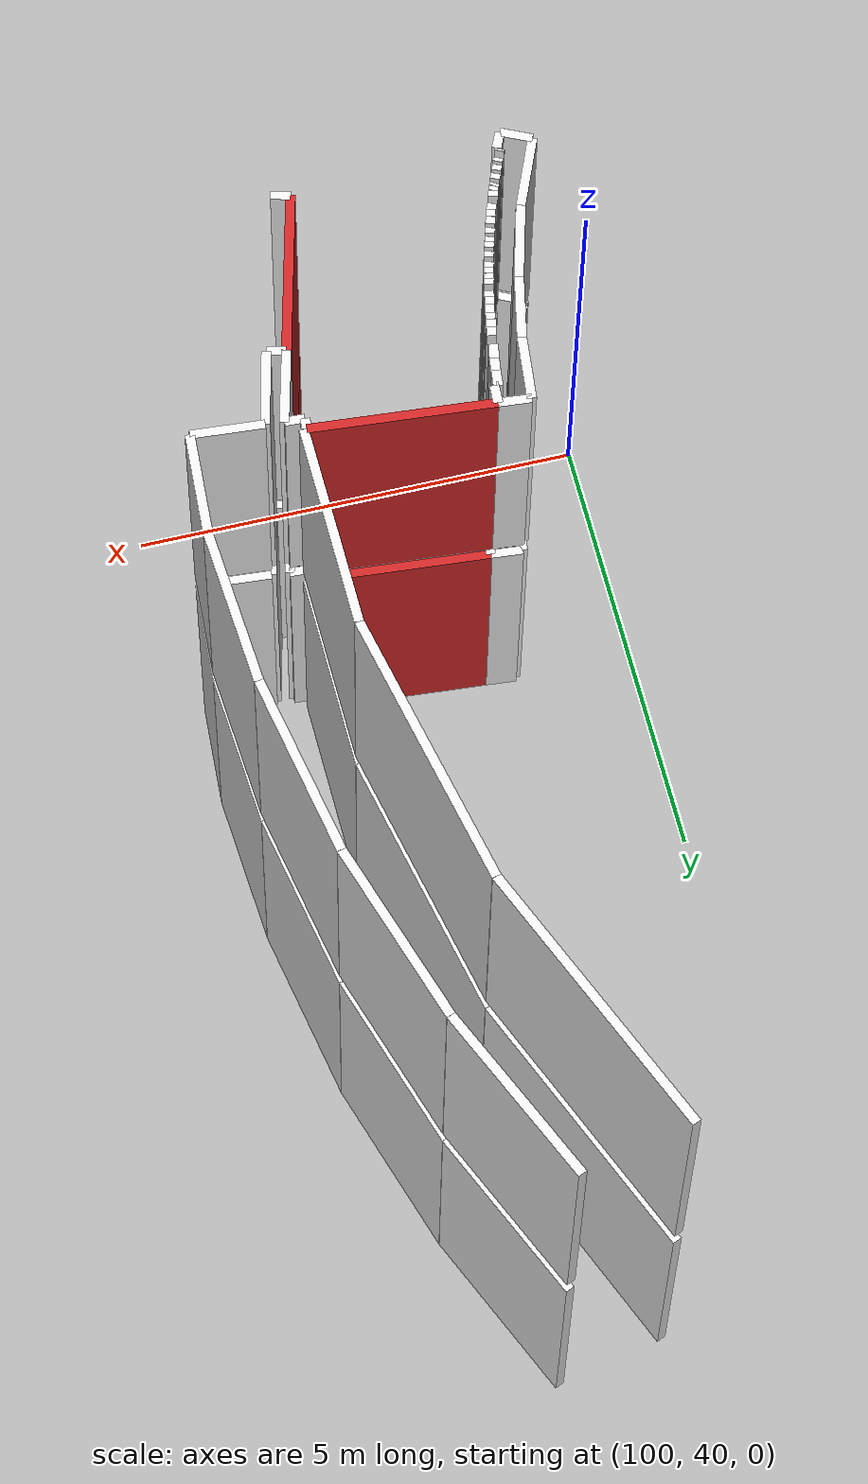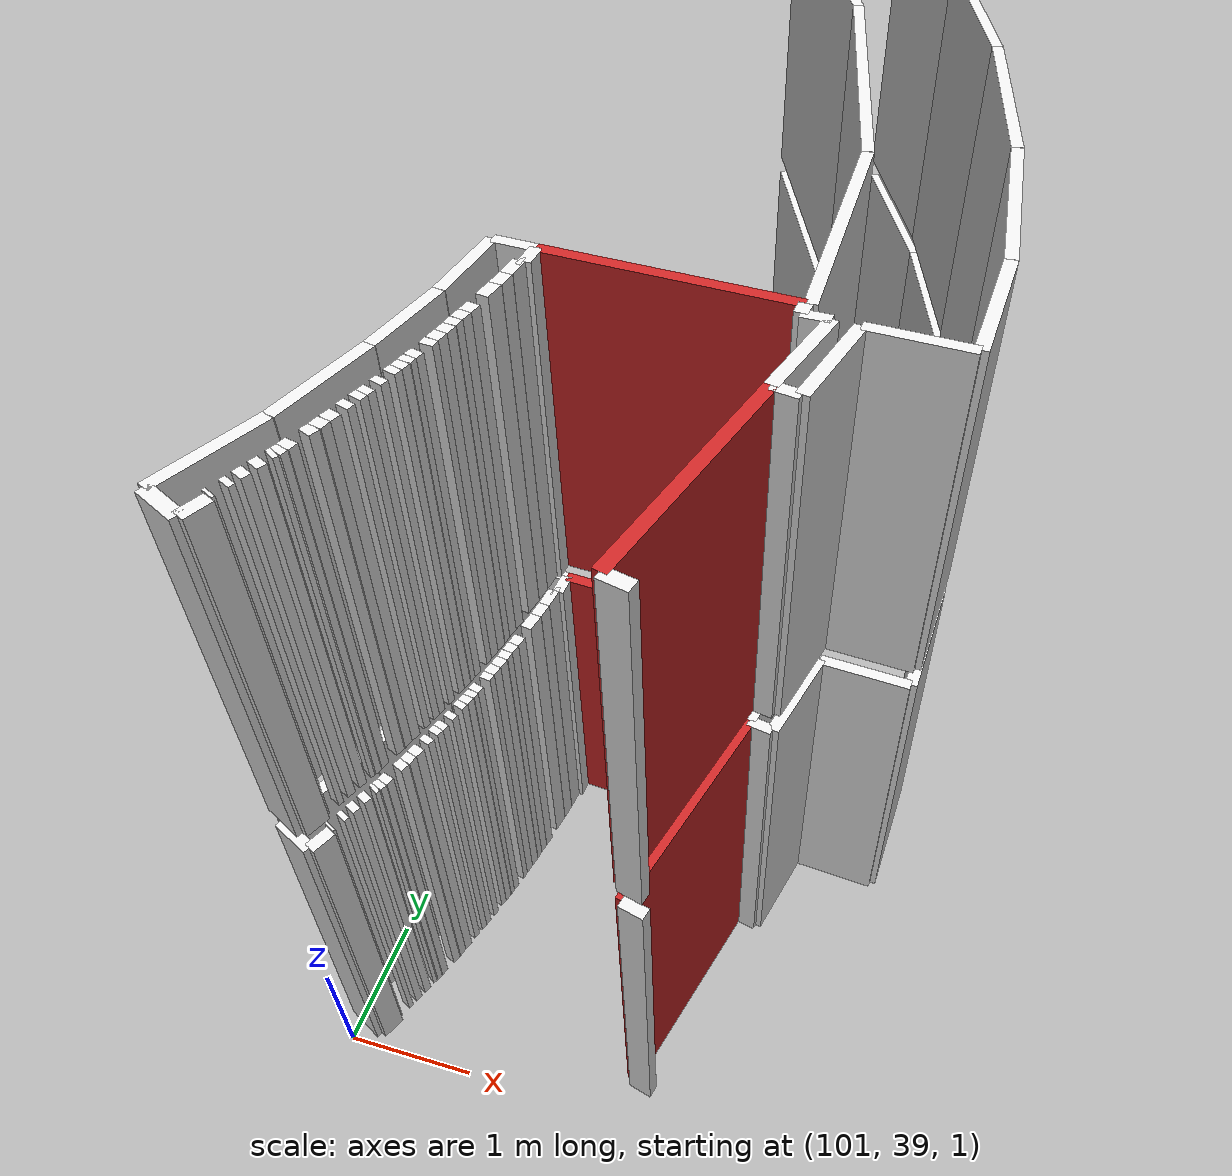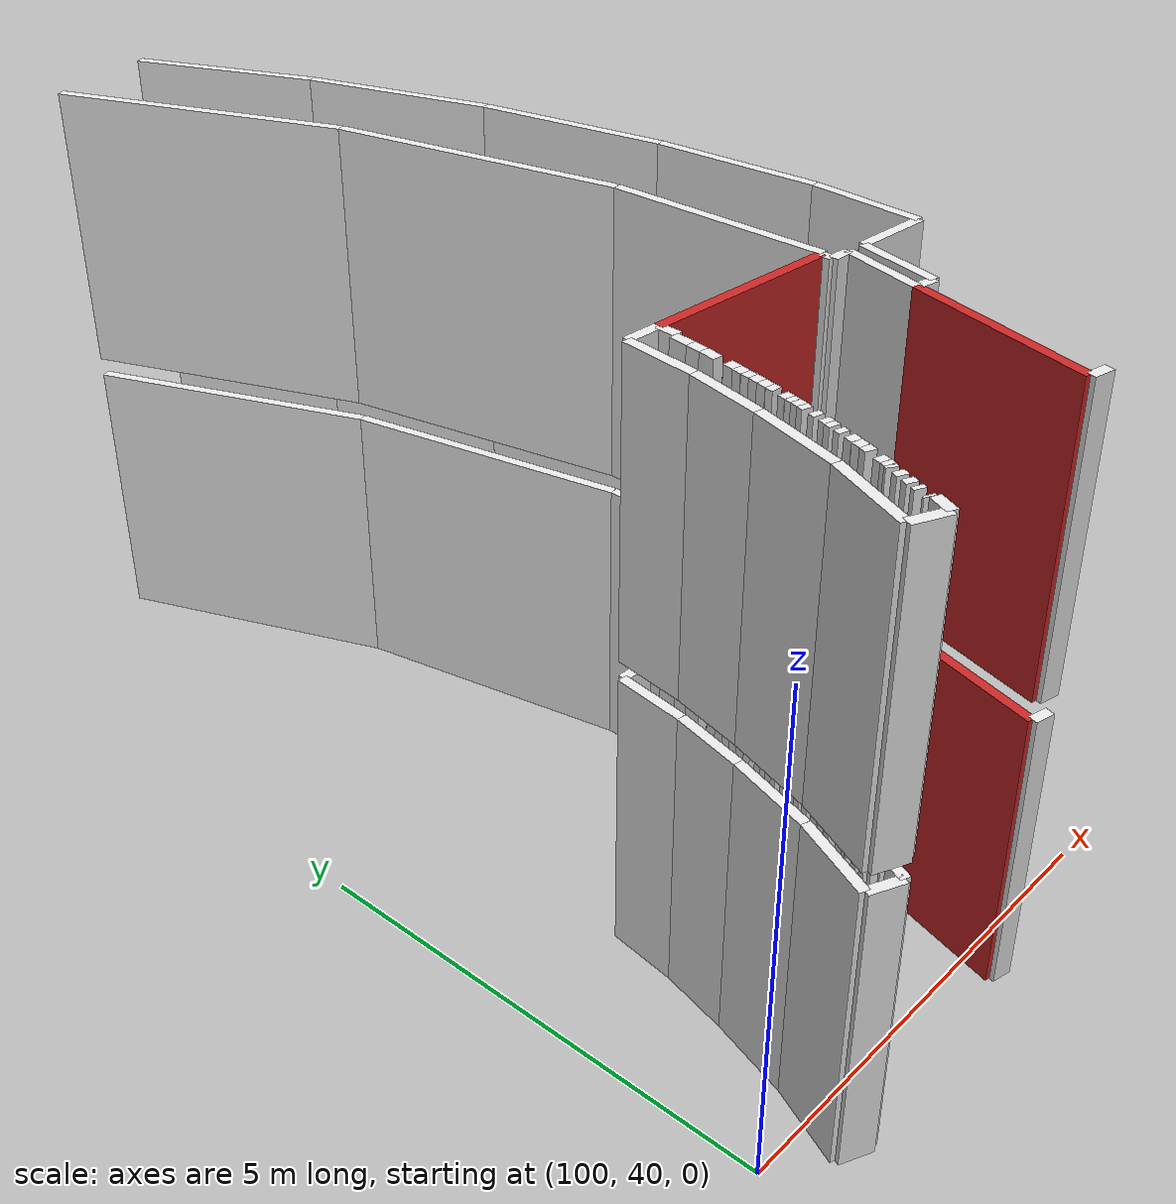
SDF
<sdf version="1.6">
 <world name="default">
  <model name="wall_102.6_42.5_0.0">
   <static>true</static>
   <pose>102.60500000001048 42.48999999999069 1.5 0 0 -0.08271241528552369</pose>
   <link name="link">
    <visual name="visual">
     <geometry><box><size>1.9366207682124321 0.1 3</size></box></geometry>
     <material>
      <script><uri>file://media/materials/scripts/gazebo.material</uri><name>Gazebo/Red</name></script>
     </material>
    </visual>
   </link>
  </model>
  <model name="wall_103.3_40.6_0.0">
   <static>true</static>
   <pose>103.3299999999872 40.59000000008382 1.5 0 0 -1.823690391929414</pose>
   <link name="link">
    <visual name="visual">
     <geometry><box><size>1.8384776308918926 0.1 3</size></box></geometry>
     <material>
      <script><uri>file://media/materials/scripts/gazebo.material</uri><name>Gazebo/Red</name></script>
     </material>
    </visual>
   </link>
  </model>
  <model name="wall_100.9_39.7_0.0">
   <static>true</static>
   <pose>100.88500000000931 39.670000000158325 1.5 0 0 1.1071487177940904</pose>
   <link name="link">
    <visual name="visual">
     <geometry><box><size>0.022360679795822902 0.1 3</size></box></geometry>
     <material>
      <script><uri>file://media/materials/scripts/gazebo.material</uri><name>Gazebo/White</name></script>
     </material>
    </visual>
   </link>
  </model>
  <model name="wall_100.9_39.8_0.0">
   <static>true</static>
   <pose>100.92999999999302 39.77999999979511 1.5 0 0 1.1071487177940904</pose>
   <link name="link">
    <visual name="visual">
     <geometry><box><size>0.044721359591645804 0.1 3</size></box></geometry>
     <material>
      <script><uri>file://media/materials/scripts/gazebo.material</uri><name>Gazebo/White</name></script>
     </material>
    </visual>
   </link>
  </model>
  <model name="wall_101.0_39.9_0.0">
   <static>true</static>
   <pose>100.96499999999651 39.86999999987893 1.5 0 0 1.1071487185701927</pose>
   <link name="link">
    <visual name="visual">
     <geometry><box><size>0.06708203936143745 0.1 3</size></box></geometry>
     <material>
      <script><uri>file://media/materials/scripts/gazebo.material</uri><name>Gazebo/White</name></script>
     </material>
    </visual>
   </link>
  </model>
  <model name="wall_101.0_40.0_0.0">
   <static>true</static>
   <pose>101.00500000000466 39.96999999997206 1.5 0 0 1.1071487177940904</pose>
   <link name="link">
    <visual name="visual">
     <geometry><box><size>0.0670820393874687 0.1 3</size></box></geometry>
     <material>
      <script><uri>file://media/materials/scripts/gazebo.material</uri><name>Gazebo/White</name></script>
     </material>
    </visual>
   </link>
  </model>
  <model name="wall_101.0_40.1_0.0">
   <static>true</static>
   <pose>101.04000000000815 40.06499999994412 1.5 0 0 0.9827937281725927</pose>
   <link name="link">
    <visual name="visual">
     <geometry><box><size>0.03605551294965821 0.1 3</size></box></geometry>
     <material>
      <script><uri>file://media/materials/scripts/gazebo.material</uri><name>Gazebo/White</name></script>
     </material>
    </visual>
   </link>
  </model>
  <model name="wall_101.1_40.1_0.0">
   <static>true</static>
   <pose>101.05999999999767 40.10499999998137 1.5 0 0 1.1902899480768032</pose>
   <link name="link">
    <visual name="visual">
     <geometry><box><size>0.05385164790532047 0.1 3</size></box></geometry>
     <material>
      <script><uri>file://media/materials/scripts/gazebo.material</uri><name>Gazebo/White</name></script>
     </material>
    </visual>
   </link>
  </model>
  <model name="wall_101.1_40.2_0.0">
   <static>true</static>
   <pose>101.0800000000163 40.16500000003725 1.5 0 0 1.2924966686683914</pose>
   <link name="link">
    <visual name="visual">
     <geometry><box><size>0.07280109918447873 0.1 3</size></box></geometry>
     <material>
      <script><uri>file://media/materials/scripts/gazebo.material</uri><name>Gazebo/White</name></script>
     </material>
    </visual>
   </link>
  </model>
  <model name="wall_101.1_40.3_0.0">
   <static>true</static>
   <pose>101.13500000000931 40.31499999994412 1.5 0 0 1.1659045417141096</pose>
   <link name="link">
    <visual name="visual">
     <geometry><box><size>0.07615773134357162 0.1 3</size></box></geometry>
     <material>
      <script><uri>file://media/materials/scripts/gazebo.material</uri><name>Gazebo/White</name></script>
     </material>
    </visual>
   </link>
  </model>
  <model name="wall_101.2_40.4_0.0">
   <static>true</static>
   <pose>101.16000000000349 40.390000000130385 1.5 0 0 1.3258176643528286</pose>
   <link name="link">
    <visual name="visual">
     <geometry><box><size>0.08246211257503461 0.1 3</size></box></geometry>
     <material>
      <script><uri>file://media/materials/scripts/gazebo.material</uri><name>Gazebo/White</name></script>
     </material>
    </visual>
   </link>
  </model>
  <model name="wall_101.2_40.5_0.0">
   <static>true</static>
   <pose>101.18499999999767 40.46999999997206 1.5 0 0 1.2120256546106478</pose>
   <link name="link">
    <visual name="visual">
     <geometry><box><size>0.0854400370967353 0.1 3</size></box></geometry>
     <material>
      <script><uri>file://media/materials/scripts/gazebo.material</uri><name>Gazebo/White</name></script>
     </material>
    </visual>
   </link>
  </model>
  <model name="wall_101.2_40.6_0.0">
   <static>true</static>
   <pose>101.22000000000116 40.59000000008382 1.5 0 0 1.2490457732713693</pose>
   <link name="link">
    <visual name="visual">
     <geometry><box><size>0.06324555324386272 0.1 3</size></box></geometry>
     <material>
      <script><uri>file://media/materials/scripts/gazebo.material</uri><name>Gazebo/White</name></script>
     </material>
    </visual>
   </link>
  </model>
  <model name="wall_101.2_40.7_0.0">
   <static>true</static>
   <pose>101.25 40.69000000017695 1.5 0 0 1.2490457723982544</pose>
   <link name="link">
    <visual name="visual">
     <geometry><box><size>0.06324555326226959 0.1 3</size></box></geometry>
     <material>
      <script><uri>file://media/materials/scripts/gazebo.material</uri><name>Gazebo/White</name></script>
     </material>
    </visual>
   </link>
  </model>
  <model name="wall_101.3_40.8_0.0">
   <static>true</static>
   <pose>101.27000000001863 40.75 1.5 0 0 1.249045770069948</pose>
   <link name="link">
    <visual name="visual">
     <geometry><box><size>0.06324555282050451 0.1 3</size></box></geometry>
     <material>
      <script><uri>file://media/materials/scripts/gazebo.material</uri><name>Gazebo/White</name></script>
     </material>
    </visual>
   </link>
  </model>
  <model name="wall_101.3_40.9_0.0">
   <static>true</static>
   <pose>101.29999999998836 40.860000000102445 1.5 0 0 1.2490457723982544</pose>
   <link name="link">
    <visual name="visual">
     <geometry><box><size>0.06324555326226959 0.1 3</size></box></geometry>
     <material>
      <script><uri>file://media/materials/scripts/gazebo.material</uri><name>Gazebo/White</name></script>
     </material>
    </visual>
   </link>
  </model>
  <model name="wall_101.3_41.0_0.0">
   <static>true</static>
   <pose>101.3300000000163 40.97999999998137 1.5 0 0 1.249045770069948</pose>
   <link name="link">
    <visual name="visual">
     <geometry><box><size>0.06324555282050451 0.1 3</size></box></geometry>
     <material>
      <script><uri>file://media/materials/scripts/gazebo.material</uri><name>Gazebo/White</name></script>
     </material>
    </visual>
   </link>
  </model>
  <model name="wall_101.4_41.0_0.0">
   <static>true</static>
   <pose>101.35000000000582 41.044999999925494 1.5 0 0 1.2924966694371718</pose>
   <link name="link">
    <visual name="visual">
     <geometry><box><size>0.07280109916848786 0.1 3</size></box></geometry>
     <material>
      <script><uri>file://media/materials/scripts/gazebo.material</uri><name>Gazebo/White</name></script>
     </material>
    </visual>
   </link>
  </model>
  <model name="wall_101.4_41.1_0.0">
   <static>true</static>
   <pose>101.36499999999069 41.110000000102445 1.5 0 0 1.4056476493802699</pose>
   <link name="link">
    <visual name="visual">
     <geometry><box><size>0.060827625359632334 0.1 3</size></box></geometry>
     <material>
      <script><uri>file://media/materials/scripts/gazebo.material</uri><name>Gazebo/White</name></script>
     </material>
    </visual>
   </link>
  </model>
  <model name="wall_101.4_41.2_0.0">
   <static>true</static>
   <pose>101.38000000000466 41.175000000046566 1.5 0 0 1.292496666911179</pose>
   <link name="link">
    <visual name="visual">
     <geometry><box><size>0.07280109873673425 0.1 3</size></box></geometry>
     <material>
      <script><uri>file://media/materials/scripts/gazebo.material</uri><name>Gazebo/White</name></script>
     </material>
    </visual>
   </link>
  </model>
  <model name="wall_101.4_41.3_0.0">
   <static>true</static>
   <pose>101.41499999997905 41.31499999994412 1.5 0 0 1.428899272656394</pose>
   <link name="link">
    <visual name="visual">
     <geometry><box><size>0.07071067841499978 0.1 3</size></box></geometry>
     <material>
      <script><uri>file://media/materials/scripts/gazebo.material</uri><name>Gazebo/White</name></script>
     </material>
    </visual>
   </link>
  </model>
  <model name="wall_101.4_41.4_0.0">
   <static>true</static>
   <pose>101.42999999999302 41.39500000001863 1.5 0 0 1.3521273803731177</pose>
   <link name="link">
    <visual name="visual">
     <geometry><box><size>0.0921954444315063 0.1 3</size></box></geometry>
     <material>
      <script><uri>file://media/materials/scripts/gazebo.material</uri><name>Gazebo/White</name></script>
     </material>
    </visual>
   </link>
  </model>
  <model name="wall_101.5_41.5_0.0">
   <static>true</static>
   <pose>101.45000000001164 41.484999999869615 1.5 0 0 1.3521273803731177</pose>
   <link name="link">
    <visual name="visual">
     <geometry><box><size>0.0921954444315063 0.1 3</size></box></geometry>
     <material>
      <script><uri>file://media/materials/scripts/gazebo.material</uri><name>Gazebo/White</name></script>
     </material>
    </visual>
   </link>
  </model>
  <model name="wall_101.5_41.6_0.0">
   <static>true</static>
   <pose>101.46499999999651 41.56999999983236 1.5 0 0 1.4464413329645371</pose>
   <link name="link">
    <visual name="visual">
     <geometry><box><size>0.08062257755085135 0.1 3</size></box></geometry>
     <material>
      <script><uri>file://media/materials/scripts/gazebo.material</uri><name>Gazebo/White</name></script>
     </material>
    </visual>
   </link>
  </model>
  <model name="wall_101.5_41.7_0.0">
   <static>true</static>
   <pose>101.47999999998137 41.65500000002794 1.5 0 0 1.3521273814687915</pose>
   <link name="link">
    <visual name="visual">
     <geometry><box><size>0.09219544488607884 0.1 3</size></box></geometry>
     <material>
      <script><uri>file://media/materials/scripts/gazebo.material</uri><name>Gazebo/White</name></script>
     </material>
    </visual>
   </link>
  </model>
  <model name="wall_101.5_41.8_0.0">
   <static>true</static>
   <pose>101.5 41.75 1.5 0 0 1.3734007660495133</pose>
   <link name="link">
    <visual name="visual">
     <geometry><box><size>0.10198038991021388 0.1 3</size></box></geometry>
     <material>
      <script><uri>file://media/materials/scripts/gazebo.material</uri><name>Gazebo/White</name></script>
     </material>
    </visual>
   </link>
  </model>
  <model name="wall_101.5_42.0_0.0">
   <static>true</static>
   <pose>101.53500000000349 41.97999999998137 1.5 0 0 1.3854483771506443</pose>
   <link name="link">
    <visual name="visual">
     <geometry><box><size>0.16278820610187839 0.1 3</size></box></geometry>
     <material>
      <script><uri>file://media/materials/scripts/gazebo.material</uri><name>Gazebo/White</name></script>
     </material>
    </visual>
   </link>
  </model>
  <model name="wall_101.6_42.1_0.0">
   <static>true</static>
   <pose>101.55999999999767 42.13000000012107 1.5 0 0 1.4288992721907328</pose>
   <link name="link">
    <visual name="visual">
     <geometry><box><size>0.1414213563690184 0.1 3</size></box></geometry>
     <material>
      <script><uri>file://media/materials/scripts/gazebo.material</uri><name>Gazebo/White</name></script>
     </material>
    </visual>
   </link>
  </model>
  <model name="wall_101.6_42.3_0.0">
   <static>true</static>
   <pose>101.5800000000163 42.29000000003725 1.5 0 0 1.4601391053370611</pose>
   <link name="link">
    <visual name="visual">
     <geometry><box><size>0.18110770246860486 0.1 3</size></box></geometry>
     <material>
      <script><uri>file://media/materials/scripts/gazebo.material</uri><name>Gazebo/White</name></script>
     </material>
    </visual>
   </link>
  </model>
  <model name="wall_101.6_42.4_0.0">
   <static>true</static>
   <pose>101.61000000001513 42.375 1.5 0 0 -0.24497865799089408</pose>
   <link name="link">
    <visual name="visual">
     <geometry><box><size>0.04123105618163657 0.1 3</size></box></geometry>
     <material>
      <script><uri>file://media/materials/scripts/gazebo.material</uri><name>Gazebo/White</name></script>
     </material>
    </visual>
   </link>
  </model>
  <model name="wall_101.6_42.5_0.0">
   <static>true</static>
   <pose>101.63500000000931 42.46999999997206 1.5 0 0 1.520837930956829</pose>
   <link name="link">
    <visual name="visual">
     <geometry><box><size>0.20024984366642476 0.1 3</size></box></geometry>
     <material>
      <script><uri>file://media/materials/scripts/gazebo.material</uri><name>Gazebo/White</name></script>
     </material>
    </visual>
   </link>
  </model>
  <model name="wall_103.6_42.4_0.0">
   <static>true</static>
   <pose>103.56500000000233 42.35000000009313 1.5 0 0 -1.6539375586833378</pose>
   <link name="link">
    <visual name="visual">
     <geometry><box><size>0.12041594590006904 0.1 3</size></box></geometry>
     <material>
      <script><uri>file://media/materials/scripts/gazebo.material</uri><name>Gazebo/White</name></script>
     </material>
    </visual>
   </link>
  </model>
  <model name="wall_103.7_42.3_0.0">
   <static>true</static>
   <pose>103.66500000000815 42.28499999991618 1.5 0 0 -0.0475831044226998</pose>
   <link name="link">
    <visual name="visual">
     <geometry><box><size>0.21023796044873502 0.1 3</size></box></geometry>
     <material>
      <script><uri>file://media/materials/scripts/gazebo.material</uri><name>Gazebo/White</name></script>
     </material>
    </visual>
   </link>
  </model>
  <model name="wall_103.7_41.9_0.0">
   <static>true</static>
   <pose>103.66500000000815 41.87999999988824 1.5 0 0 -1.8275046573099654</pose>
   <link name="link">
    <visual name="visual">
     <geometry><box><size>0.8271033790952481 0.1 3</size></box></geometry>
     <material>
      <script><uri>file://media/materials/scripts/gazebo.material</uri><name>Gazebo/White</name></script>
     </material>
    </visual>
   </link>
  </model>
  <model name="wall_100.9_39.6_0.0">
   <static>true</static>
   <pose>100.86999999999534 39.550000000046566 1.5 0 0 1.1525719977557387</pose>
   <link name="link">
    <visual name="visual">
     <geometry><box><size>0.19697715617209063 0.1 3</size></box></geometry>
     <material>
      <script><uri>file://media/materials/scripts/gazebo.material</uri><name>Gazebo/White</name></script>
     </material>
    </visual>
   </link>
  </model>
  <model name="wall_102.3_49.1_0.0">
   <static>true</static>
   <pose>102.34500000000116 49.050000000046566 1.5 0 0 -1.1789674300212807</pose>
   <link name="link">
    <visual name="visual">
     <geometry><box><size>3.1161675182897373 0.1 3</size></box></geometry>
     <material>
      <script><uri>file://media/materials/scripts/gazebo.material</uri><name>Gazebo/White</name></script>
     </material>
    </visual>
   </link>
  </model>
  <model name="wall_103.3_46.1_0.0">
   <static>true</static>
   <pose>103.25500000000466 46.125 1.5 0 0 -1.361773383969309</pose>
   <link name="link">
    <visual name="visual">
     <geometry><box><size>3.036083002563812 0.1 3</size></box></geometry>
     <material>
      <script><uri>file://media/materials/scripts/gazebo.material</uri><name>Gazebo/White</name></script>
     </material>
    </visual>
   </link>
  </model>
  <model name="wall_103.6_43.5_0.0">
   <static>true</static>
   <pose>103.58499999999185 43.5250000001397 1.5 0 0 -1.5573442234956494</pose>
   <link name="link">
    <visual name="visual">
     <geometry><box><size>2.230201784573564 0.1 3</size></box></geometry>
     <material>
      <script><uri>file://media/materials/scripts/gazebo.material</uri><name>Gazebo/White</name></script>
     </material>
    </visual>
   </link>
  </model>
  <model name="wall_101.5_42.6_0.0">
   <static>true</static>
   <pose>101.47000000000116 42.58499999996275 1.5 0 0 3.053585279307601</pose>
   <link name="link">
    <visual name="visual">
     <geometry><box><size>0.3413209633659526 0.1 3</size></box></geometry>
     <material>
      <script><uri>file://media/materials/scripts/gazebo.material</uri><name>Gazebo/White</name></script>
     </material>
    </visual>
   </link>
  </model>
  <model name="wall_101.3_42.2_0.0">
   <static>true</static>
   <pose>101.25999999998021 42.24500000011176 1.5 0 0 -1.6829991418206562</pose>
   <link name="link">
    <visual name="visual">
     <geometry><box><size>0.7144928270806562 0.1 3</size></box></geometry>
     <material>
      <script><uri>file://media/materials/scripts/gazebo.material</uri><name>Gazebo/White</name></script>
     </material>
    </visual>
   </link>
  </model>
  <model name="wall_101.1_41.5_0.0">
   <static>true</static>
   <pose>101.14499999998952 41.54000000003725 1.5 0 0 -1.7818896599154248</pose>
   <link name="link">
    <visual name="visual">
     <geometry><box><size>0.7158910533386299 0.1 3</size></box></geometry>
     <material>
      <script><uri>file://media/materials/scripts/gazebo.material</uri><name>Gazebo/White</name></script>
     </material>
    </visual>
   </link>
  </model>
  <model name="wall_101.0_40.8_0.0">
   <static>true</static>
   <pose>100.9550000000163 40.78000000002794 1.5 0 0 -1.8442573139172422</pose>
   <link name="link">
    <visual name="visual">
     <geometry><box><size>0.8516454659754289 0.1 3</size></box></geometry>
     <material>
      <script><uri>file://media/materials/scripts/gazebo.material</uri><name>Gazebo/White</name></script>
     </material>
    </visual>
   </link>
  </model>
  <model name="wall_100.7_40.0_0.0">
   <static>true</static>
   <pose>100.68000000002212 39.98999999999069 1.5 0 0 -1.9693187723551735</pose>
   <link name="link">
    <visual name="visual">
     <geometry><box><size>0.824621125349411 0.1 3</size></box></geometry>
     <material>
      <script><uri>file://media/materials/scripts/gazebo.material</uri><name>Gazebo/White</name></script>
     </material>
    </visual>
   </link>
  </model>
  <model name="wall_100.7_39.5_0.0">
   <static>true</static>
   <pose>100.67500000001746 39.53499999991618 1.5 0 0 -0.4506613258401467</pose>
   <link name="link">
    <visual name="visual">
     <geometry><box><size>0.34438350711179067 0.1 3</size></box></geometry>
     <material>
      <script><uri>file://media/materials/scripts/gazebo.material</uri><name>Gazebo/White</name></script>
     </material>
    </visual>
   </link>
  </model>
  <model name="wall_103.2_39.7_0.0">
   <static>true</static>
   <pose>103.19999999998254 39.675000000046566 1.5 0 0 2.896613989161817</pose>
   <link name="link">
    <visual name="visual">
     <geometry><box><size>0.20615528135994066 0.1 3</size></box></geometry>
     <material>
      <script><uri>file://media/materials/scripts/gazebo.material</uri><name>Gazebo/White</name></script>
     </material>
    </visual>
   </link>
  </model>
  <model name="wall_103.7_41.5_0.0">
   <static>true</static>
   <pose>103.66000000000349 41.45999999996275 1.5 0 0 -0.19739556001778746</pose>
   <link name="link">
    <visual name="visual">
     <geometry><box><size>0.20396078056243275 0.1 3</size></box></geometry>
     <material>
      <script><uri>file://media/materials/scripts/gazebo.material</uri><name>Gazebo/White</name></script>
     </material>
    </visual>
   </link>
  </model>
  <model name="wall_103.9_41.8_0.0">
   <static>true</static>
   <pose>103.86000000001513 41.8499999998603 1.5 0 0 1.3315647267707733</pose>
   <link name="link">
    <visual name="visual">
     <geometry><box><size>0.8440379136802625 0.1 3</size></box></geometry>
     <material>
      <script><uri>file://media/materials/scripts/gazebo.material</uri><name>Gazebo/White</name></script>
     </material>
    </visual>
   </link>
  </model>
  <model name="wall_104.3_42.2_0.0">
   <static>true</static>
   <pose>104.33999999999651 42.22999999998137 1.5 0 0 -0.07878396045834442</pose>
   <link name="link">
    <visual name="visual">
     <geometry><box><size>0.762364742020843 0.1 3</size></box></geometry>
     <material>
      <script><uri>file://media/materials/scripts/gazebo.material</uri><name>Gazebo/White</name></script>
     </material>
    </visual>
   </link>
  </model>
  <model name="wall_104.8_42.8_0.0">
   <static>true</static>
   <pose>104.75499999997555 42.77000000001863 1.5 0 0 1.509469815630436</pose>
   <link name="link">
    <visual name="visual">
     <geometry><box><size>1.1421471005245114 0.1 3</size></box></geometry>
     <material>
      <script><uri>file://media/materials/scripts/gazebo.material</uri><name>Gazebo/White</name></script>
     </material>
    </visual>
   </link>
  </model>
  <model name="wall_104.7_44.2_0.0">
   <static>true</static>
   <pose>104.72999999998137 44.18999999994412 1.5 0 0 1.6412676713632708</pose>
   <link name="link">
    <visual name="visual">
     <geometry><box><size>1.7042300316072891 0.1 3</size></box></geometry>
     <material>
      <script><uri>file://media/materials/scripts/gazebo.material</uri><name>Gazebo/White</name></script>
     </material>
    </visual>
   </link>
  </model>
  <model name="wall_104.5_46.0_0.0">
   <static>true</static>
   <pose>104.48999999999069 46.015000000130385 1.5 0 0 1.7533561799018222</pose>
   <link name="link">
    <visual name="visual">
     <geometry><box><size>1.982952344539922 0.1 3</size></box></geometry>
     <material>
      <script><uri>file://media/materials/scripts/gazebo.material</uri><name>Gazebo/White</name></script>
     </material>
    </visual>
   </link>
  </model>
  <model name="wall_104.0_47.9_0.0">
   <static>true</static>
   <pose>104.01000000000931 47.94500000006519 1.5 0 0 1.8751710629953546</pose>
   <link name="link">
    <visual name="visual">
     <geometry><box><size>2.002023975571336 0.1 3</size></box></geometry>
     <material>
      <script><uri>file://media/materials/scripts/gazebo.material</uri><name>Gazebo/White</name></script>
     </material>
    </visual>
   </link>
  </model>
  <model name="wall_103.3_49.8_0.0">
   <static>true</static>
   <pose>103.30999999999767 49.81499999994412 1.5 0 0 1.9829200711588533</pose>
   <link name="link">
    <visual name="visual">
     <geometry><box><size>1.9972230722548738 0.1 3</size></box></geometry>
     <material>
      <script><uri>file://media/materials/scripts/gazebo.material</uri><name>Gazebo/White</name></script>
     </material>
    </visual>
   </link>
  </model>
  <model name="wall_102.6_42.5_3.2">
   <static>true</static>
   <pose>102.60500000001048 42.48999999999069 4.7 0 0 -0.08271241528552369</pose>
   <link name="link">
    <visual name="visual">
     <geometry><box><size>1.9366207682124321 0.1 3</size></box></geometry>
     <material>
      <script><uri>file://media/materials/scripts/gazebo.material</uri><name>Gazebo/Red</name></script>
     </material>
    </visual>
   </link>
  </model>
  <model name="wall_103.3_40.6_3.2">
   <static>true</static>
   <pose>103.3299999999872 40.59000000008382 4.7 0 0 -1.823690391929414</pose>
   <link name="link">
    <visual name="visual">
     <geometry><box><size>1.8384776308918926 0.1 3</size></box></geometry>
     <material>
      <script><uri>file://media/materials/scripts/gazebo.material</uri><name>Gazebo/Red</name></script>
     </material>
    </visual>
   </link>
  </model>
  <model name="wall_100.9_39.7_3.2">
   <static>true</static>
   <pose>100.88500000000931 39.670000000158325 4.7 0 0 1.1071487177940904</pose>
   <link name="link">
    <visual name="visual">
     <geometry><box><size>0.022360679795822902 0.1 3</size></box></geometry>
     <material>
      <script><uri>file://media/materials/scripts/gazebo.material</uri><name>Gazebo/White</name></script>
     </material>
    </visual>
   </link>
  </model>
  <model name="wall_100.9_39.8_3.2">
   <static>true</static>
   <pose>100.92999999999302 39.77999999979511 4.7 0 0 1.1071487177940904</pose>
   <link name="link">
    <visual name="visual">
     <geometry><box><size>0.044721359591645804 0.1 3</size></box></geometry>
     <material>
      <script><uri>file://media/materials/scripts/gazebo.material</uri><name>Gazebo/White</name></script>
     </material>
    </visual>
   </link>
  </model>
  <model name="wall_101.0_39.9_3.2">
   <static>true</static>
   <pose>100.96499999999651 39.86999999987893 4.7 0 0 1.1071487185701927</pose>
   <link name="link">
    <visual name="visual">
     <geometry><box><size>0.06708203936143745 0.1 3</size></box></geometry>
     <material>
      <script><uri>file://media/materials/scripts/gazebo.material</uri><name>Gazebo/White</name></script>
     </material>
    </visual>
   </link>
  </model>
  <model name="wall_101.0_40.0_3.2">
   <static>true</static>
   <pose>101.00500000000466 39.96999999997206 4.7 0 0 1.1071487177940904</pose>
   <link name="link">
    <visual name="visual">
     <geometry><box><size>0.0670820393874687 0.1 3</size></box></geometry>
     <material>
      <script><uri>file://media/materials/scripts/gazebo.material</uri><name>Gazebo/White</name></script>
     </material>
    </visual>
   </link>
  </model>
  <model name="wall_101.0_40.1_3.2">
   <static>true</static>
   <pose>101.04000000000815 40.06499999994412 4.7 0 0 0.9827937281725927</pose>
   <link name="link">
    <visual name="visual">
     <geometry><box><size>0.03605551294965821 0.1 3</size></box></geometry>
     <material>
      <script><uri>file://media/materials/scripts/gazebo.material</uri><name>Gazebo/White</name></script>
     </material>
    </visual>
   </link>
  </model>
  <model name="wall_101.1_40.1_3.2">
   <static>true</static>
   <pose>101.05999999999767 40.10499999998137 4.7 0 0 1.1902899480768032</pose>
   <link name="link">
    <visual name="visual">
     <geometry><box><size>0.05385164790532047 0.1 3</size></box></geometry>
     <material>
      <script><uri>file://media/materials/scripts/gazebo.material</uri><name>Gazebo/White</name></script>
     </material>
    </visual>
   </link>
  </model>
  <model name="wall_101.1_40.2_3.2">
   <static>true</static>
   <pose>101.0800000000163 40.16500000003725 4.7 0 0 1.2924966686683914</pose>
   <link name="link">
    <visual name="visual">
     <geometry><box><size>0.07280109918447873 0.1 3</size></box></geometry>
     <material>
      <script><uri>file://media/materials/scripts/gazebo.material</uri><name>Gazebo/White</name></script>
     </material>
    </visual>
   </link>
  </model>
  <model name="wall_101.1_40.3_3.2">
   <static>true</static>
   <pose>101.13500000000931 40.31499999994412 4.7 0 0 1.1659045417141096</pose>
   <link name="link">
    <visual name="visual">
     <geometry><box><size>0.07615773134357162 0.1 3</size></box></geometry>
     <material>
      <script><uri>file://media/materials/scripts/gazebo.material</uri><name>Gazebo/White</name></script>
     </material>
    </visual>
   </link>
  </model>
  <model name="wall_101.2_40.4_3.2">
   <static>true</static>
   <pose>101.16000000000349 40.390000000130385 4.7 0 0 1.3258176643528286</pose>
   <link name="link">
    <visual name="visual">
     <geometry><box><size>0.08246211257503461 0.1 3</size></box></geometry>
     <material>
      <script><uri>file://media/materials/scripts/gazebo.material</uri><name>Gazebo/White</name></script>
     </material>
    </visual>
   </link>
  </model>
  <model name="wall_101.2_40.5_3.2">
   <static>true</static>
   <pose>101.18499999999767 40.46999999997206 4.7 0 0 1.2120256546106478</pose>
   <link name="link">
    <visual name="visual">
     <geometry><box><size>0.0854400370967353 0.1 3</size></box></geometry>
     <material>
      <script><uri>file://media/materials/scripts/gazebo.material</uri><name>Gazebo/White</name></script>
     </material>
    </visual>
   </link>
  </model>
  <model name="wall_101.2_40.6_3.2">
   <static>true</static>
   <pose>101.22000000000116 40.59000000008382 4.7 0 0 1.2490457732713693</pose>
   <link name="link">
    <visual name="visual">
     <geometry><box><size>0.06324555324386272 0.1 3</size></box></geometry>
     <material>
      <script><uri>file://media/materials/scripts/gazebo.material</uri><name>Gazebo/White</name></script>
     </material>
    </visual>
   </link>
  </model>
  <model name="wall_101.2_40.7_3.2">
   <static>true</static>
   <pose>101.25 40.69000000017695 4.7 0 0 1.2490457723982544</pose>
   <link name="link">
    <visual name="visual">
     <geometry><box><size>0.06324555326226959 0.1 3</size></box></geometry>
     <material>
      <script><uri>file://media/materials/scripts/gazebo.material</uri><name>Gazebo/White</name></script>
     </material>
    </visual>
   </link>
  </model>
  <model name="wall_101.3_40.8_3.2">
   <static>true</static>
   <pose>101.27000000001863 40.75 4.7 0 0 1.249045770069948</pose>
   <link name="link">
    <visual name="visual">
     <geometry><box><size>0.06324555282050451 0.1 3</size></box></geometry>
     <material>
      <script><uri>file://media/materials/scripts/gazebo.material</uri><name>Gazebo/White</name></script>
     </material>
    </visual>
   </link>
  </model>
  <model name="wall_101.3_40.9_3.2">
   <static>true</static>
   <pose>101.29999999998836 40.860000000102445 4.7 0 0 1.2490457723982544</pose>
   <link name="link">
    <visual name="visual">
     <geometry><box><size>0.06324555326226959 0.1 3</size></box></geometry>
     <material>
      <script><uri>file://media/materials/scripts/gazebo.material</uri><name>Gazebo/White</name></script>
     </material>
    </visual>
   </link>
  </model>
  <model name="wall_101.3_41.0_3.2">
   <static>true</static>
   <pose>101.3300000000163 40.97999999998137 4.7 0 0 1.249045770069948</pose>
   <link name="link">
    <visual name="visual">
     <geometry><box><size>0.06324555282050451 0.1 3</size></box></geometry>
     <material>
      <script><uri>file://media/materials/scripts/gazebo.material</uri><name>Gazebo/White</name></script>
     </material>
    </visual>
   </link>
  </model>
  <model name="wall_101.4_41.0_3.2">
   <static>true</static>
   <pose>101.35000000000582 41.044999999925494 4.7 0 0 1.2924966694371718</pose>
   <link name="link">
    <visual name="visual">
     <geometry><box><size>0.07280109916848786 0.1 3</size></box></geometry>
     <material>
      <script><uri>file://media/materials/scripts/gazebo.material</uri><name>Gazebo/White</name></script>
     </material>
    </visual>
   </link>
  </model>
  <model name="wall_101.4_41.1_3.2">
   <static>true</static>
   <pose>101.36499999999069 41.110000000102445 4.7 0 0 1.4056476493802699</pose>
   <link name="link">
    <visual name="visual">
     <geometry><box><size>0.060827625359632334 0.1 3</size></box></geometry>
     <material>
      <script><uri>file://media/materials/scripts/gazebo.material</uri><name>Gazebo/White</name></script>
     </material>
    </visual>
   </link>
  </model>
  <model name="wall_101.4_41.2_3.2">
   <static>true</static>
   <pose>101.38000000000466 41.175000000046566 4.7 0 0 1.292496666911179</pose>
   <link name="link">
    <visual name="visual">
     <geometry><box><size>0.07280109873673425 0.1 3</size></box></geometry>
     <material>
      <script><uri>file://media/materials/scripts/gazebo.material</uri><name>Gazebo/White</name></script>
     </material>
    </visual>
   </link>
  </model>
  <model name="wall_101.4_41.3_3.2">
   <static>true</static>
   <pose>101.41499999997905 41.31499999994412 4.7 0 0 1.428899272656394</pose>
   <link name="link">
    <visual name="visual">
     <geometry><box><size>0.07071067841499978 0.1 3</size></box></geometry>
     <material>
      <script><uri>file://media/materials/scripts/gazebo.material</uri><name>Gazebo/White</name></script>
     </material>
    </visual>
   </link>
  </model>
  <model name="wall_101.4_41.4_3.2">
   <static>true</static>
   <pose>101.42999999999302 41.39500000001863 4.7 0 0 1.3521273803731177</pose>
   <link name="link">
    <visual name="visual">
     <geometry><box><size>0.0921954444315063 0.1 3</size></box></geometry>
     <material>
      <script><uri>file://media/materials/scripts/gazebo.material</uri><name>Gazebo/White</name></script>
     </material>
    </visual>
   </link>
  </model>
  <model name="wall_101.5_41.5_3.2">
   <static>true</static>
   <pose>101.45000000001164 41.484999999869615 4.7 0 0 1.3521273803731177</pose>
   <link name="link">
    <visual name="visual">
     <geometry><box><size>0.0921954444315063 0.1 3</size></box></geometry>
     <material>
      <script><uri>file://media/materials/scripts/gazebo.material</uri><name>Gazebo/White</name></script>
     </material>
    </visual>
   </link>
  </model>
  <model name="wall_101.5_41.6_3.2">
   <static>true</static>
   <pose>101.46499999999651 41.56999999983236 4.7 0 0 1.4464413329645371</pose>
   <link name="link">
    <visual name="visual">
     <geometry><box><size>0.08062257755085135 0.1 3</size></box></geometry>
     <material>
      <script><uri>file://media/materials/scripts/gazebo.material</uri><name>Gazebo/White</name></script>
     </material>
    </visual>
   </link>
  </model>
  <model name="wall_101.5_41.7_3.2">
   <static>true</static>
   <pose>101.47999999998137 41.65500000002794 4.7 0 0 1.3521273814687915</pose>
   <link name="link">
    <visual name="visual">
     <geometry><box><size>0.09219544488607884 0.1 3</size></box></geometry>
     <material>
      <script><uri>file://media/materials/scripts/gazebo.material</uri><name>Gazebo/White</name></script>
     </material>
    </visual>
   </link>
  </model>
  <model name="wall_101.5_41.8_3.2">
   <static>true</static>
   <pose>101.5 41.75 4.7 0 0 1.3734007660495133</pose>
   <link name="link">
    <visual name="visual">
     <geometry><box><size>0.10198038991021388 0.1 3</size></box></geometry>
     <material>
      <script><uri>file://media/materials/scripts/gazebo.material</uri><name>Gazebo/White</name></script>
     </material>
    </visual>
   </link>
  </model>
  <model name="wall_101.5_42.0_3.2">
   <static>true</static>
   <pose>101.53500000000349 41.97999999998137 4.7 0 0 1.3854483771506443</pose>
   <link name="link">
    <visual name="visual">
     <geometry><box><size>0.16278820610187839 0.1 3</size></box></geometry>
     <material>
      <script><uri>file://media/materials/scripts/gazebo.material</uri><name>Gazebo/White</name></script>
     </material>
    </visual>
   </link>
  </model>
  <model name="wall_101.6_42.1_3.2">
   <static>true</static>
   <pose>101.55999999999767 42.13000000012107 4.7 0 0 1.4288992721907328</pose>
   <link name="link">
    <visual name="visual">
     <geometry><box><size>0.1414213563690184 0.1 3</size></box></geometry>
     <material>
      <script><uri>file://media/materials/scripts/gazebo.material</uri><name>Gazebo/White</name></script>
     </material>
    </visual>
   </link>
  </model>
  <model name="wall_101.6_42.3_3.2">
   <static>true</static>
   <pose>101.5800000000163 42.29000000003725 4.7 0 0 1.4601391053370611</pose>
   <link name="link">
    <visual name="visual">
     <geometry><box><size>0.18110770246860486 0.1 3</size></box></geometry>
     <material>
      <script><uri>file://media/materials/scripts/gazebo.material</uri><name>Gazebo/White</name></script>
     </material>
    </visual>
   </link>
  </model>
  <model name="wall_101.6_42.4_3.2">
   <static>true</static>
   <pose>101.61000000001513 42.375 4.7 0 0 -0.24497865799089408</pose>
   <link name="link">
    <visual name="visual">
     <geometry><box><size>0.04123105618163657 0.1 3</size></box></geometry>
     <material>
      <script><uri>file://media/materials/scripts/gazebo.material</uri><name>Gazebo/White</name></script>
     </material>
    </visual>
   </link>
  </model>
  <model name="wall_101.6_42.5_3.2">
   <static>true</static>
   <pose>101.63500000000931 42.46999999997206 4.7 0 0 1.520837930956829</pose>
   <link name="link">
    <visual name="visual">
     <geometry><box><size>0.20024984366642476 0.1 3</size></box></geometry>
     <material>
      <script><uri>file://media/materials/scripts/gazebo.material</uri><name>Gazebo/White</name></script>
     </material>
    </visual>
   </link>
  </model>
  <model name="wall_103.6_42.4_3.2">
   <static>true</static>
   <pose>103.56500000000233 42.35000000009313 4.7 0 0 -1.6539375586833378</pose>
   <link name="link">
    <visual name="visual">
     <geometry><box><size>0.12041594590006904 0.1 3</size></box></geometry>
     <material>
      <script><uri>file://media/materials/scripts/gazebo.material</uri><name>Gazebo/White</name></script>
     </material>
    </visual>
   </link>
  </model>
  <model name="wall_103.7_42.3_3.2">
   <static>true</static>
   <pose>103.66500000000815 42.28499999991618 4.7 0 0 -0.0475831044226998</pose>
   <link name="link">
    <visual name="visual">
     <geometry><box><size>0.21023796044873502 0.1 3</size></box></geometry>
     <material>
      <script><uri>file://media/materials/scripts/gazebo.material</uri><name>Gazebo/White</name></script>
     </material>
    </visual>
   </link>
  </model>
  <model name="wall_103.7_41.9_3.2">
   <static>true</static>
   <pose>103.66500000000815 41.87999999988824 4.7 0 0 -1.8275046573099654</pose>
   <link name="link">
    <visual name="visual">
     <geometry><box><size>0.8271033790952481 0.1 3</size></box></geometry>
     <material>
      <script><uri>file://media/materials/scripts/gazebo.material</uri><name>Gazebo/White</name></script>
     </material>
    </visual>
   </link>
  </model>
  <model name="wall_100.9_39.6_3.2">
   <static>true</static>
   <pose>100.86999999999534 39.550000000046566 4.7 0 0 1.1525719977557387</pose>
   <link name="link">
    <visual name="visual">
     <geometry><box><size>0.19697715617209063 0.1 3</size></box></geometry>
     <material>
      <script><uri>file://media/materials/scripts/gazebo.material</uri><name>Gazebo/White</name></script>
     </material>
    </visual>
   </link>
  </model>
  <model name="wall_102.3_49.1_3.2">
   <static>true</static>
   <pose>102.34500000000116 49.050000000046566 4.7 0 0 -1.1789674300212807</pose>
   <link name="link">
    <visual name="visual">
     <geometry><box><size>3.1161675182897373 0.1 3</size></box></geometry>
     <material>
      <script><uri>file://media/materials/scripts/gazebo.material</uri><name>Gazebo/White</name></script>
     </material>
    </visual>
   </link>
  </model>
  <model name="wall_103.3_46.1_3.2">
   <static>true</static>
   <pose>103.25500000000466 46.125 4.7 0 0 -1.361773383969309</pose>
   <link name="link">
    <visual name="visual">
     <geometry><box><size>3.036083002563812 0.1 3</size></box></geometry>
     <material>
      <script><uri>file://media/materials/scripts/gazebo.material</uri><name>Gazebo/White</name></script>
     </material>
    </visual>
   </link>
  </model>
  <model name="wall_103.6_43.5_3.2">
   <static>true</static>
   <pose>103.58499999999185 43.5250000001397 4.7 0 0 -1.5573442234956494</pose>
   <link name="link">
    <visual name="visual">
     <geometry><box><size>2.230201784573564 0.1 3</size></box></geometry>
     <material>
      <script><uri>file://media/materials/scripts/gazebo.material</uri><name>Gazebo/White</name></script>
     </material>
    </visual>
   </link>
  </model>
  <model name="wall_101.5_42.6_3.2">
   <static>true</static>
   <pose>101.47000000000116 42.58499999996275 4.7 0 0 3.053585279307601</pose>
   <link name="link">
    <visual name="visual">
     <geometry><box><size>0.3413209633659526 0.1 3</size></box></geometry>
     <material>
      <script><uri>file://media/materials/scripts/gazebo.material</uri><name>Gazebo/White</name></script>
     </material>
    </visual>
   </link>
  </model>
  <model name="wall_101.3_42.2_3.2">
   <static>true</static>
   <pose>101.25999999998021 42.24500000011176 4.7 0 0 -1.6829991418206562</pose>
   <link name="link">
    <visual name="visual">
     <geometry><box><size>0.7144928270806562 0.1 3</size></box></geometry>
     <material>
      <script><uri>file://media/materials/scripts/gazebo.material</uri><name>Gazebo/White</name></script>
     </material>
    </visual>
   </link>
  </model>
  <model name="wall_101.1_41.5_3.2">
   <static>true</static>
   <pose>101.14499999998952 41.54000000003725 4.7 0 0 -1.7818896599154248</pose>
   <link name="link">
    <visual name="visual">
     <geometry><box><size>0.7158910533386299 0.1 3</size></box></geometry>
     <material>
      <script><uri>file://media/materials/scripts/gazebo.material</uri><name>Gazebo/White</name></script>
     </material>
    </visual>
   </link>
  </model>
  <model name="wall_101.0_40.8_3.2">
   <static>true</static>
   <pose>100.9550000000163 40.78000000002794 4.7 0 0 -1.8442573139172422</pose>
   <link name="link">
    <visual name="visual">
     <geometry><box><size>0.8516454659754289 0.1 3</size></box></geometry>
     <material>
      <script><uri>file://media/materials/scripts/gazebo.material</uri><name>Gazebo/White</name></script>
     </material>
    </visual>
   </link>
  </model>
  <model name="wall_100.7_40.0_3.2">
   <static>true</static>
   <pose>100.68000000002212 39.98999999999069 4.7 0 0 -1.9693187723551735</pose>
   <link name="link">
    <visual name="visual">
     <geometry><box><size>0.824621125349411 0.1 3</size></box></geometry>
     <material>
      <script><uri>file://media/materials/scripts/gazebo.material</uri><name>Gazebo/White</name></script>
     </material>
    </visual>
   </link>
  </model>
  <model name="wall_100.7_39.5_3.2">
   <static>true</static>
   <pose>100.67500000001746 39.53499999991618 4.7 0 0 -0.4506613258401467</pose>
   <link name="link">
    <visual name="visual">
     <geometry><box><size>0.34438350711179067 0.1 3</size></box></geometry>
     <material>
      <script><uri>file://media/materials/scripts/gazebo.material</uri><name>Gazebo/White</name></script>
     </material>
    </visual>
   </link>
  </model>
  <model name="wall_103.2_39.7_3.2">
   <static>true</static>
   <pose>103.19999999998254 39.675000000046566 4.7 0 0 2.896613989161817</pose>
   <link name="link">
    <visual name="visual">
     <geometry><box><size>0.20615528135994066 0.1 3</size></box></geometry>
     <material>
      <script><uri>file://media/materials/scripts/gazebo.material</uri><name>Gazebo/White</name></script>
     </material>
    </visual>
   </link>
  </model>
  <model name="wall_103.7_41.5_3.2">
   <static>true</static>
   <pose>103.66000000000349 41.45999999996275 4.7 0 0 -0.19739556001778746</pose>
   <link name="link">
    <visual name="visual">
     <geometry><box><size>0.20396078056243275 0.1 3</size></box></geometry>
     <material>
      <script><uri>file://media/materials/scripts/gazebo.material</uri><name>Gazebo/White</name></script>
     </material>
    </visual>
   </link>
  </model>
  <model name="wall_103.9_41.8_3.2">
   <static>true</static>
   <pose>103.86000000001513 41.8499999998603 4.7 0 0 1.3315647267707733</pose>
   <link name="link">
    <visual name="visual">
     <geometry><box><size>0.8440379136802625 0.1 3</size></box></geometry>
     <material>
      <script><uri>file://media/materials/scripts/gazebo.material</uri><name>Gazebo/White</name></script>
     </material>
    </visual>
   </link>
  </model>
  <model name="wall_104.3_42.2_3.2">
   <static>true</static>
   <pose>104.33999999999651 42.22999999998137 4.7 0 0 -0.07878396045834442</pose>
   <link name="link">
    <visual name="visual">
     <geometry><box><size>0.762364742020843 0.1 3</size></box></geometry>
     <material>
      <script><uri>file://media/materials/scripts/gazebo.material</uri><name>Gazebo/White</name></script>
     </material>
    </visual>
   </link>
  </model>
  <model name="wall_104.8_42.8_3.2">
   <static>true</static>
   <pose>104.75499999997555 42.77000000001863 4.7 0 0 1.509469815630436</pose>
   <link name="link">
    <visual name="visual">
     <geometry><box><size>1.1421471005245114 0.1 3</size></box></geometry>
     <material>
      <script><uri>file://media/materials/scripts/gazebo.material</uri><name>Gazebo/White</name></script>
     </material>
    </visual>
   </link>
  </model>
  <model name="wall_104.7_44.2_3.2">
   <static>true</static>
   <pose>104.72999999998137 44.18999999994412 4.7 0 0 1.6412676713632708</pose>
   <link name="link">
    <visual name="visual">
     <geometry><box><size>1.7042300316072891 0.1 3</size></box></geometry>
     <material>
      <script><uri>file://media/materials/scripts/gazebo.material</uri><name>Gazebo/White</name></script>
     </material>
    </visual>
   </link>
  </model>
  <model name="wall_104.5_46.0_3.2">
   <static>true</static>
   <pose>104.48999999999069 46.015000000130385 4.7 0 0 1.7533561799018222</pose>
   <link name="link">
    <visual name="visual">
     <geometry><box><size>1.982952344539922 0.1 3</size></box></geometry>
     <material>
      <script><uri>file://media/materials/scripts/gazebo.material</uri><name>Gazebo/White</name></script>
     </material>
    </visual>
   </link>
  </model>
  <model name="wall_104.0_47.9_3.2">
   <static>true</static>
   <pose>104.01000000000931 47.94500000006519 4.7 0 0 1.8751710629953546</pose>
   <link name="link">
    <visual name="visual">
     <geometry><box><size>2.002023975571336 0.1 3</size></box></geometry>
     <material>
      <script><uri>file://media/materials/scripts/gazebo.material</uri><name>Gazebo/White</name></script>
     </material>
    </visual>
   </link>
  </model>
  <model name="wall_103.3_49.8_3.2">
   <static>true</static>
   <pose>103.30999999999767 49.81499999994412 4.7 0 0 1.9829200711588533</pose>
   <link name="link">
    <visual name="visual">
     <geometry><box><size>1.9972230722548738 0.1 3</size></box></geometry>
     <material>
      <script><uri>file://media/materials/scripts/gazebo.material</uri><name>Gazebo/White</name></script>
     </material>
    </visual>
   </link>
  </model>
 </world>
</sdf>
